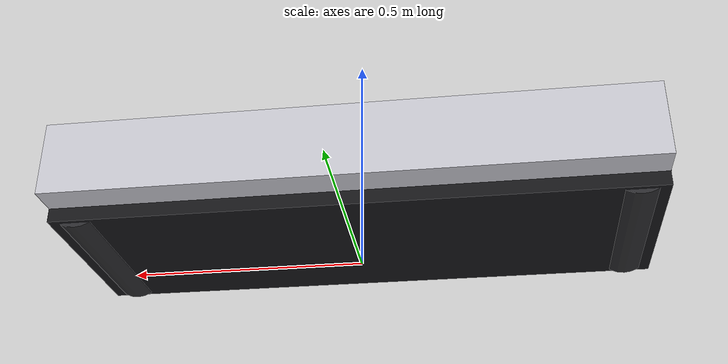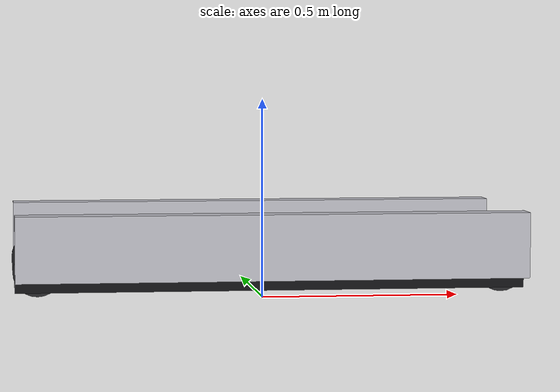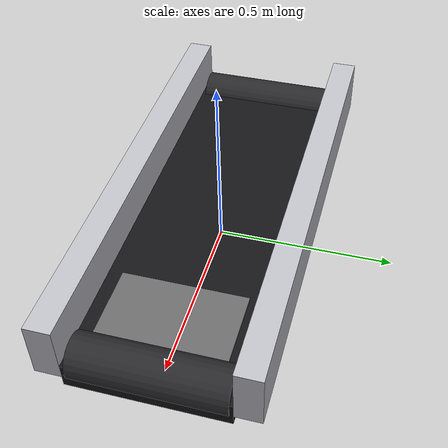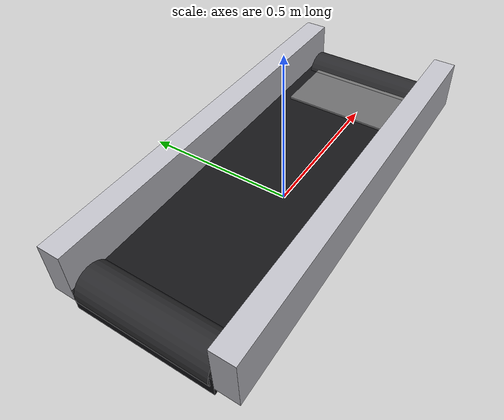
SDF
<?xml version="1.0"?>
<sdf version="1.10">

  <model name="conveyor">

    <static>true</static>

    <!-- Moving contact surface                             -->

    <link name="belt_link">

      <collision name="belt_collision">

        <pose>0 0 0.075 0 0 0</pose>

        <geometry>
          <box>
            <size>1.25 0.42 0.07</size>
          </box>
        </geometry>

        <surface>

          <friction>
            <ode>

              <!-- Across-belt friction -->
              <mu>0.8</mu>

              <!-- Along-belt traction -->
              <mu2>100</mu2>

              <fdir1>0 1 0</fdir1>

            </ode>
          </friction>

          <contact>
            <ode>
              <kp>1000000</kp>
              <kd>100</kd>
            </ode>
          </contact>

        </surface>

      </collision>

      <visual name="belt_visual">

        <pose>0 0 0.075 0 0 0</pose>

        <geometry>
          <box>
            <size>1.25 0.42 0.07</size>
          </box>
        </geometry>

        <material>
          <ambient>0.06 0.06 0.07 1</ambient>
          <diffuse>0.08 0.08 0.09 1</diffuse>
          <specular>0.15 0.15 0.15 1</specular>
        </material>

      </visual>

    </link>

    <!-- Static conveyor frame                              -->

    <link name="frame_link">

      <collision name="left_rail_collision">
        <pose>0 0.245 0.15 0 0 0</pose>
        <geometry>
          <box>
            <size>1.25 0.07 0.16</size>
          </box>
        </geometry>
      </collision>

      <visual name="left_rail_visual">
        <pose>0 0.245 0.15 0 0 0</pose>
        <geometry>
          <box>
            <size>1.25 0.07 0.16</size>
          </box>
        </geometry>
        <material>
          <ambient>0.75 0.75 0.78 1</ambient>
          <diffuse>0.75 0.75 0.78 1</diffuse>
        </material>
      </visual>

      <collision name="right_rail_collision">
        <pose>0 -0.245 0.15 0 0 0</pose>
        <geometry>
          <box>
            <size>1.25 0.07 0.16</size>
          </box>
        </geometry>
      </collision>

      <visual name="right_rail_visual">
        <pose>0 -0.245 0.15 0 0 0</pose>
        <geometry>
          <box>
            <size>1.25 0.07 0.16</size>
          </box>
        </geometry>
        <material>
          <ambient>0.75 0.75 0.78 1</ambient>
          <diffuse>0.75 0.75 0.78 1</diffuse>
        </material>
      </visual>

      <visual name="input_roller_visual">
        <pose>-0.57 0 0.09 1.5708 0 0</pose>
        <geometry>
          <cylinder>
            <radius>0.06</radius>
            <length>0.40</length>
          </cylinder>
        </geometry>
        <material>
          <ambient>0.16 0.16 0.17 1</ambient>
          <diffuse>0.16 0.16 0.17 1</diffuse>
        </material>
      </visual>

      <visual name="output_roller_visual">
        <pose>0.57 0 0.09 1.5708 0 0</pose>
        <geometry>
          <cylinder>
            <radius>0.06</radius>
            <length>0.40</length>
          </cylinder>
        </geometry>
        <material>
          <ambient>0.16 0.16 0.17 1</ambient>
          <diffuse>0.16 0.16 0.17 1</diffuse>
        </material>
      </visual>

      <!-- Green pickup-zone marker -->
      <visual name="pickup_zone_visual">

        <pose>0.44 0 0.115 0 0 0</pose>

        <geometry>
          <box>
            <size>0.24 0.34 0.008</size>
          </box>
        </geometry>

        <material>
          <ambient>0.65 0.65 0.65 0.65</ambient>
          <diffuse>0.65 0.65 0.65 0.65</diffuse>
        </material>

        <transparency>0.28</transparency>

      </visual>

    </link>

    <!-- Gazebo conveyor controller                         -->

    <plugin
      filename="gz-sim-track-controller-system"
      name="gz::sim::systems::TrackController">

      <link>belt_link</link>

      <!-- Belt direction is local +X -->
      <track_orientation>0 0 0</track_orientation>

      <velocity_topic>/conveyor/cmd_vel</velocity_topic>

      <odometry_topic>/conveyor/odometry</odometry_topic>

      <odometry_publish_frequency>20</odometry_publish_frequency>

      <min_velocity>-0.40</min_velocity>
      <max_velocity>0.40</max_velocity>

      <min_acceleration>-0.50</min_acceleration>
      <max_acceleration>0.50</max_acceleration>

    </plugin>

  </model>

</sdf>
